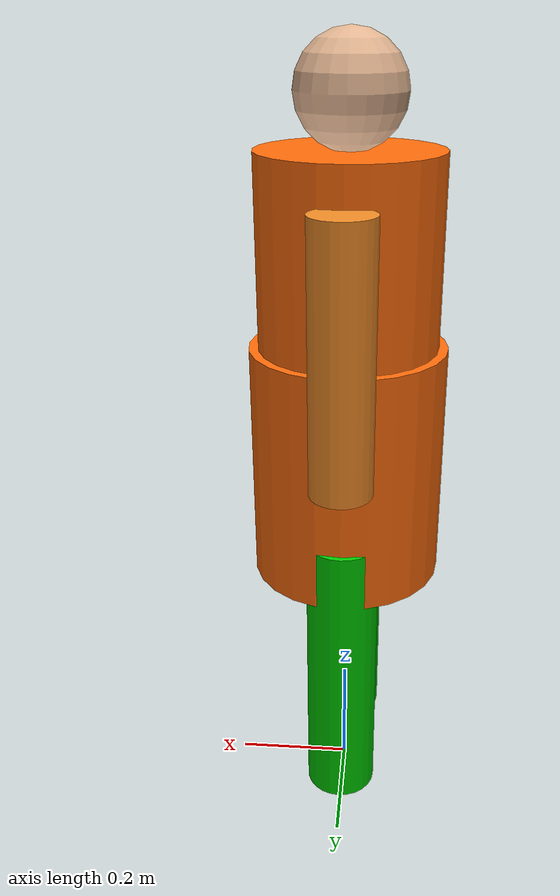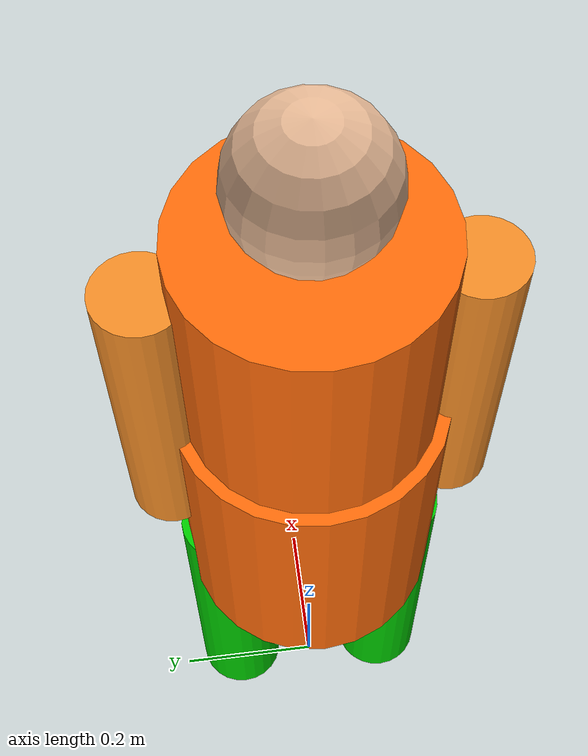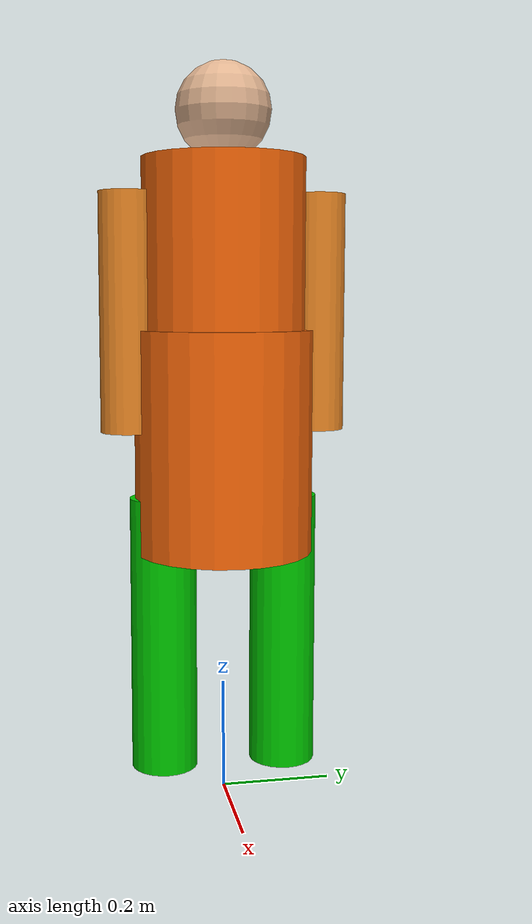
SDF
<?xml version="1.0" ?>
<sdf version="1.9">
  <model name="sim_human">
    <link name="body">
      <inertial>
        <mass>70.0</mass>
        <pose>0 0 0.8 0 0 0</pose>
        <inertia><ixx>10.0</ixx><ixy>0</ixy><ixz>0</ixz><iyy>10.0</iyy><iyz>0</iyz><izz>2.0</izz></inertia>
      </inertial>

      <!-- Lower spine segment: hip 0.45 -> chest 0.85. -->
      <collision name="torso_lower_collision">
        <pose>0 0 0.65 0 0 0</pose>
        <geometry><cylinder><radius>0.16</radius><length>0.40</length></cylinder></geometry>
      </collision>
      <visual name="torso_lower_visual">
        <pose>0 0 0.65 0 0 0</pose>
        <geometry><cylinder><radius>0.16</radius><length>0.40</length></cylinder></geometry>
        <material><ambient>1.0 0.42 0.04 1</ambient><diffuse>1.0 0.42 0.04 1</diffuse></material>
      </visual>

      <!-- Upper spine segment: chest 0.85 -> crown 1.15. -->
      <collision name="torso_upper_collision">
        <pose>0 0 1.00 0 0 0</pose>
        <geometry><cylinder><radius>0.145</radius><length>0.30</length></cylinder></geometry>
      </collision>
      <visual name="torso_upper_visual">
        <pose>0 0 1.00 0 0 0</pose>
        <geometry><cylinder><radius>0.145</radius><length>0.30</length></cylinder></geometry>
        <material><ambient>1.0 0.42 0.04 1</ambient><diffuse>1.0 0.42 0.04 1</diffuse></material>
      </visual>

      <visual name="head_visual">
        <pose>0 0 1.23 0 0 0</pose>
        <geometry><sphere><radius>0.085</radius></sphere></geometry>
        <material><ambient>0.90 0.72 0.58 1</ambient><diffuse>0.90 0.72 0.58 1</diffuse></material>
      </visual>

      <!-- Arms: shoulders at 1.09, hanging 0.42 m to 0.67. -->
      <collision name="arm_left_collision">
        <pose>0 0.17 0.88 0 0 0</pose>
        <geometry><cylinder><radius>0.05</radius><length>0.42</length></cylinder></geometry>
      </collision>
      <visual name="arm_left_visual">
        <pose>0 0.17 0.88 0 0 0</pose>
        <geometry><cylinder><radius>0.05</radius><length>0.42</length></cylinder></geometry>
        <material><ambient>0.95 0.55 0.15 1</ambient><diffuse>0.95 0.55 0.15 1</diffuse></material>
      </visual>

      <collision name="arm_right_collision">
        <pose>0 -0.17 0.88 0 0 0</pose>
        <geometry><cylinder><radius>0.05</radius><length>0.42</length></cylinder></geometry>
      </collision>
      <visual name="arm_right_visual">
        <pose>0 -0.17 0.88 0 0 0</pose>
        <geometry><cylinder><radius>0.05</radius><length>0.42</length></cylinder></geometry>
        <material><ambient>0.95 0.55 0.15 1</ambient><diffuse>0.95 0.55 0.15 1</diffuse></material>
      </visual>

      <!-- Legs: hips at 0.55, hanging 0.50 m to 0.05. The lidar slice. -->
      <collision name="leg_left_collision">
        <pose>0 0.11 0.30 0 0 0</pose>
        <geometry><cylinder><radius>0.06</radius><length>0.50</length></cylinder></geometry>
      </collision>
      <visual name="leg_left_visual">
        <pose>0 0.11 0.30 0 0 0</pose>
        <geometry><cylinder><radius>0.06</radius><length>0.50</length></cylinder></geometry>
        <material><ambient>0 0.8 0 1</ambient><diffuse>0 0.8 0 1</diffuse></material>
      </visual>

      <collision name="leg_right_collision">
        <pose>0 -0.11 0.30 0 0 0</pose>
        <geometry><cylinder><radius>0.06</radius><length>0.50</length></cylinder></geometry>
      </collision>
      <visual name="leg_right_visual">
        <pose>0 -0.11 0.30 0 0 0</pose>
        <geometry><cylinder><radius>0.06</radius><length>0.50</length></cylinder></geometry>
        <material><ambient>0 0.8 0 1</ambient><diffuse>0 0.8 0 1</diffuse></material>
      </visual>
    </link>

    <plugin filename="ignition-gazebo-velocity-control-system"
            name="ignition::gazebo::systems::VelocityControl">
      <topic>cmd_vel</topic>
    </plugin>

    <plugin filename="ignition-gazebo-pose-publisher-system"
            name="ignition::gazebo::systems::PosePublisher">
      <publish_link_pose>false</publish_link_pose>
      <publish_collision_pose>false</publish_collision_pose>
      <publish_visual_pose>false</publish_visual_pose>
      <publish_model_pose>true</publish_model_pose>
      <publish_nested_model_pose>false</publish_nested_model_pose>
      <use_pose_vector_msg>false</use_pose_vector_msg>
      <update_frequency>50</update_frequency>
    </plugin>
  </model>
</sdf>
